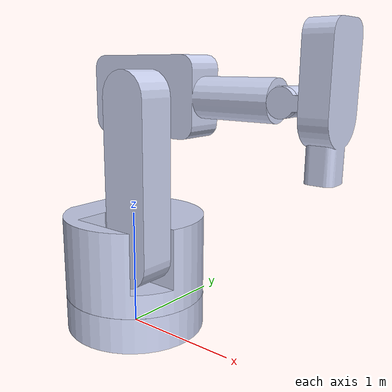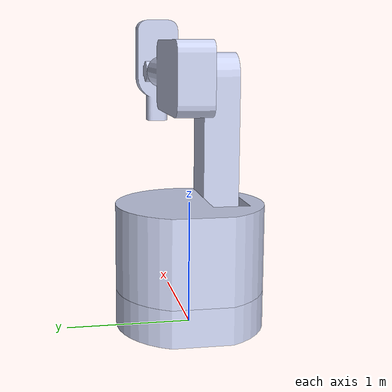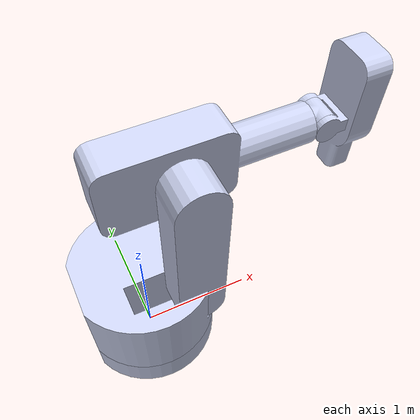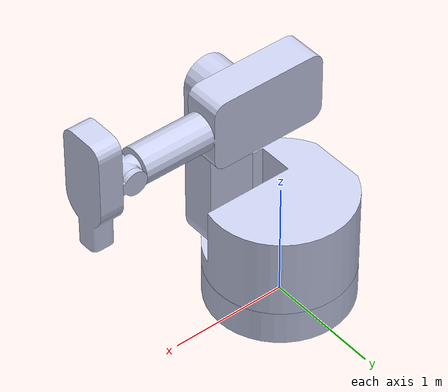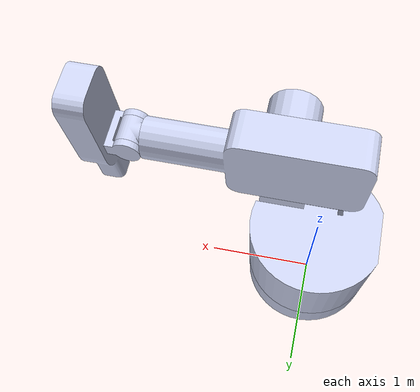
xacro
<?xml version="1.0" ?>
<robot
  name="cyberknife" xmlns:xacro="http://ros.org/wiki/xacro">

  <xacro:include filename="cyberknife_laser.xacro" />
  <xacro:include filename="xacro_colors.xacro"/>
  <xacro:include filename="controller_position.xacro" />
  <xacro:include filename="odom.xacro" />

</robot>

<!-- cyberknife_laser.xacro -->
<robot xmlns:xacro="http://ros.org/wiki/xacro">
    <link name="world"></link>
  <link
    name="base_link">
    <inertial>
      <origin
        xyz="0.0082451 0.15 1.9295E-17"
        rpy="0 0 0" />
      <mass
        value="334.45" />
      <inertia
        ixx="32.989"
        ixy="2.8333E-16"
        ixz="-1.1027E-15"
        iyy="59.421"
        iyz="-6.6498E-17"
        izz="31.449" />
    </inertial>
    <visual>
      <origin
        xyz="0 0 0"
        rpy="0 0 0" />
      <geometry>
        <mesh
          filename="package://cyberknife/meshes/base_link.STL" />
      </geometry>
      <material
        name="">
        <color
          rgba="0.79216 0.81961 0.93333 1" />
      </material>
    </visual>
    <collision>
      <origin
        xyz="0 0 0"
        rpy="0 0 0" />
      <geometry>
        <mesh
          filename="package://cyberknife/meshes/base_link.STL" />
      </geometry>
    </collision>
  </link>
  <joint name="world_joint" type="fixed">
    <parent link="world"/>
    <child link="base_link"/>
  </joint>
  <link
    name="base2_link">
    <inertial>
      <origin
        xyz="-0.021051 0.33235 -0.048325"
        rpy="0 0 0" />
      <mass
        value="663.35" />
      <inertia
        ixx="87.738"
        ixy="2.2863"
        ixz="5.6219"
        iyy="118.23"
        iyz="3.7712"
        izz="86.914" />
    </inertial>
    <visual>
      <origin
        xyz="0 0 0"
        rpy="0 0 0" />
      <geometry>
        <mesh
          filename="package://cyberknife/meshes/base2_link.STL" />
      </geometry>
      <material
        name="">
        <color
          rgba="0.79216 0.81961 0.93333 1" />
      </material>
    </visual>
    <collision>
      <origin
        xyz="0 0 0"
        rpy="0 0 0" />
      <geometry>
        <mesh
          filename="package://cyberknife/meshes/base2_link.STL" />
      </geometry>
    </collision>
  </link>
  <joint
    name="base2"
    type="continuous">
    <origin
      xyz="0 0 0.3"
      rpy="1.5708 0 0" />
    <parent
      link="base_link" />
    <child
      link="base2_link" />
    <axis
      xyz="0 1 0" />
  </joint>
  <link
    name="joint1_link">
    <inertial>
      <origin
        xyz="-5.5511E-17 0.625 0.27716"
        rpy="0 0 0" />
      <mass
        value="208.9" />
      <inertia
        ixx="49.449"
        ixy="-1.5799E-15"
        ixz="-1.808E-16"
        iyy="4.9083"
        iyz="9.1254E-17"
        izz="49.534" />
    </inertial>
    <visual>
      <origin
        xyz="0 0 0"
        rpy="0 0 0" />
      <geometry>
        <mesh
          filename="package://cyberknife/meshes/joint1_link.STL" />
      </geometry>
      <material
        name="">
        <color
          rgba="0.79216 0.81961 0.93333 1" />
      </material>
    </visual>
    <collision>
      <origin
        xyz="0 0 0"
        rpy="0 0 0" />
      <geometry>
        <mesh
          filename="package://cyberknife/meshes/joint1_link.STL" />
      </geometry>
    </collision>
  </link>
  <joint
    name="joint1"
    type="revolute">
    <origin
      xyz="0.35 0.45 0"
      rpy="0 0 0" />
    <parent
      link="base2_link" />
    <child
      link="joint1_link" />
    <axis
      xyz="0 0 1" />
    <limit
      lower="-1.57"
      upper="0.8"
      effort="0"
      velocity="0" />
  </joint>
  <link
    name="joint2_link">
    <inertial>
      <origin
        xyz="0.043481 0 -0.0038586"
        rpy="0 0 0" />
      <mass
        value="206.09" />
      <inertia
        ixx="6.8504"
        ixy="4.4181E-15"
        ixz="-0.034577"
        iyy="36.431"
        iyz="-3.0254E-16"
        izz="40.324" />
    </inertial>
    <visual>
      <origin
        xyz="0 0 0"
        rpy="0 0 0" />
      <geometry>
        <mesh
          filename="package://cyberknife/meshes/joint2_link.STL" />
      </geometry>
      <material
        name="">
        <color
          rgba="0.79216 0.81961 0.93333 1" />
      </material>
    </visual>
    <collision>
      <origin
        xyz="0 0 0"
        rpy="0 0 0" />
      <geometry>
        <mesh
          filename="package://cyberknife/meshes/joint2_link.STL" />
      </geometry>
    </collision>
</link>
  <joint
    name="joint2"
    type="revolute">
    <origin
      xyz="0 1.25 0"
      rpy="0 0 0" />
    <parent
      link="joint1_link" />
    <child
      link="joint2_link" />
    <axis
      xyz="0 0 1" />
    <limit
      lower="-0.97"
      upper="4.015"
      effort="0"
      velocity="0" />
  </joint>
  <link
    name="joint3_link">
    <inertial>
      <origin
        xyz="0.14843 7.5699E-07 -6.3398E-08"
        rpy="0 0 0" />
      <mass
        value="9.8998" />
      <inertia
        ixx="0.055624"
        ixy="-2.1955E-09"
        ixz="1.531E-17"
        iyy="0.095588"
        iyz="-2.1355E-06"
        izz="0.092129" />
    </inertial>
    <visual>
      <origin
        xyz="0 0 0"
        rpy="0 0 0" />
      <geometry>
        <mesh
          filename="package://cyberknife/meshes/joint3_link.STL" />
      </geometry>
      <material
        name="">
        <color
          rgba="0.79216 0.81961 0.93333 1" />
      </material>
    </visual>
    <collision>
      <origin
        xyz="0 0 0"
        rpy="0 0 0" />
      <geometry>
        <mesh
          filename="package://cyberknife/meshes/joint3_link.STL" />
      </geometry>
    </collision>
</link>
  <joint
    name="joint3"
    type="continuous">
    <origin
      xyz="0.9 0 0"
      rpy="0 0 0" />
    <parent
      link="joint2_link" />
    <child
      link="joint3_link" />
    <axis
      xyz="1 0 0" />
  </joint>
  <link
    name="joint4_link">
    <inertial>
      <origin
        xyz="0.063752 -2.2204E-16 4.9549E-18"
        rpy="0 0 0" />
      <mass
        value="5.4704" />
      <inertia
        ixx="0.07183"
        ixy="5.456E-18"
        ixz="1.2367E-18"
        iyy="0.10401"
        iyz="-2.1337E-18"
        izz="0.051502" />
    </inertial>
    <visual>
      <origin
        xyz="0 0 0"
        rpy="0 0 0" />
      <geometry>
        <mesh
          filename="package://cyberknife/meshes/joint4_link.STL" />
      </geometry>
      <material
        name="">
        <color
          rgba="0.79216 0.81961 0.93333 1" />
      </material>
    </visual>
    <collision>
      <origin
        xyz="0 0 0"
        rpy="0 0 0" />
      <geometry>
        <mesh
          filename="package://cyberknife/meshes/joint4_link.STL" />
      </geometry>
    </collision>
</link>
  <joint
    name="joint4"
    type="revolute">
    <origin
      xyz="0.2 0 0"
      rpy="0 0 0" />
    <parent
      link="joint3_link" />
    <child
      link="joint4_link" />
    <axis
      xyz="0 0 1" />
    <limit
      lower="-1.55"
      upper="1.55"
      effort="0"
      velocity="0" />
  </joint>
  <link
    name="joint5_link">
    <inertial>
      <origin
        xyz="0.1006 0.060159 -7.521E-09"
        rpy="0 0 0" />
      <mass
        value="65.816" />
      <inertia
        ixx="5.3463"
        ixy="0.0023624"
        ixz="5.5471E-07"
        iyy="0.95763"
        iyz="-3.2254E-08"
        izz="4.8226" />
    </inertial>
    <visual>
      <origin
        xyz="0 0 0"
        rpy="0 0 0" />
      <geometry>
        <mesh
          filename="package://cyberknife/meshes/joint5_link.STL" />
      </geometry>
      <material
        name="">
        <color
          rgba="0.79216 0.81961 0.93333 1" />
      </material>
    </visual>
    <collision>
      <origin
        xyz="0 0 0"
        rpy="0 0 0" />
      <geometry>
        <mesh
          filename="package://cyberknife/meshes/joint5_link.STL" />
      </geometry>
    </collision>
</link>
  <joint
    name="joint5"
    type="continuous">
    <origin
      xyz="0.15 0 0"
      rpy="0 0 0" />
    <parent
      link="joint4_link" />
    <child
      link="joint5_link" />
    <axis
      xyz="1 0 0" />
  </joint>
  <link
    name="laser_Link">
    <inertial>
      <origin
        xyz="0.0005 -0.495 0.0005"
        rpy="0 0 0" />
      <mass
        value="0.00099" />
      <inertia
        ixx="8.0858E-05"
        ixy="-3.5293E-24"
        ixz="-6.8932E-27"
        iyy="1.65E-10"
        iyz="-6.8242E-24"
        izz="8.0858E-05" />
    </inertial>
    <visual>
      <origin
        xyz="0 0 0"
        rpy="0 0 0" />
      <geometry>
        <mesh
          filename="package://cyberknife/meshes/laser_Link.STL" />
      </geometry>
      <material
        name="">
        <color
          rgba="0.79216 0.81961 0.93333 1" />
      </material>
    </visual>
    <collision>
      <origin
        xyz="0 0 0"
        rpy="0 0 0" />
      <geometry>
        <mesh
          filename="package://cyberknife/meshes/laser_Link.STL" />
      </geometry>
    </collision>
  </link>
  <joint
    name="laser"
    type="revolute">
    <origin
      xyz="0.1 -0.5 0"
      rpy="0 0 0" />
    <parent
      link="joint5_link" />
    <child
      link="laser_Link" />
    <axis
      xyz="0 1 0" />
    <limit
      lower="0"
      upper="0"
      effort="0"
      velocity="0" />
  </joint>
</robot>
